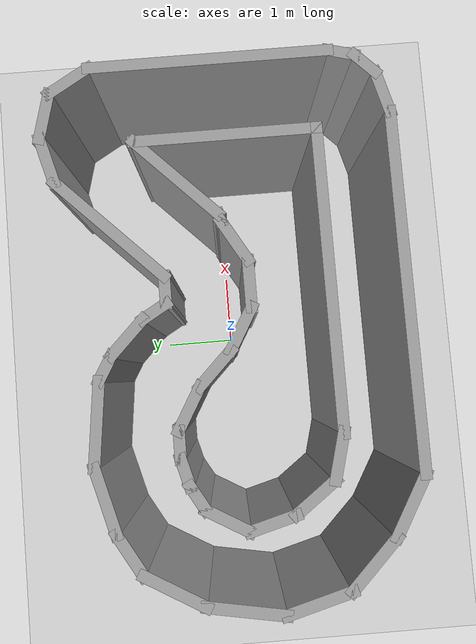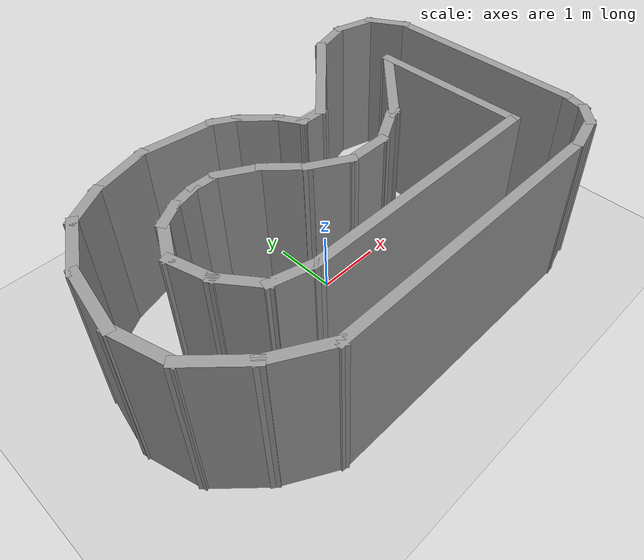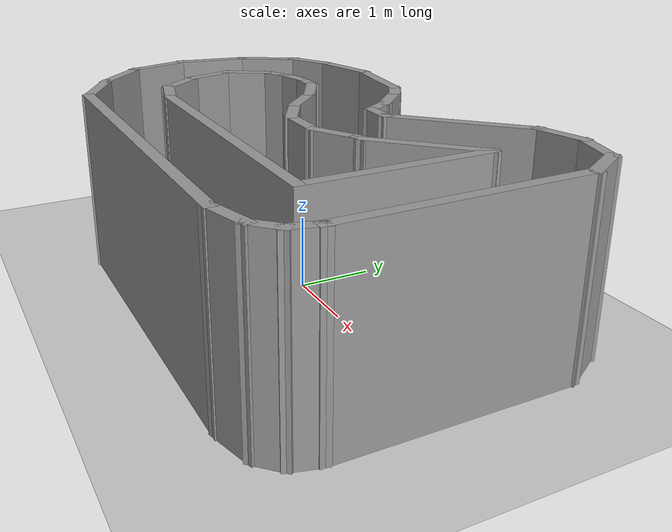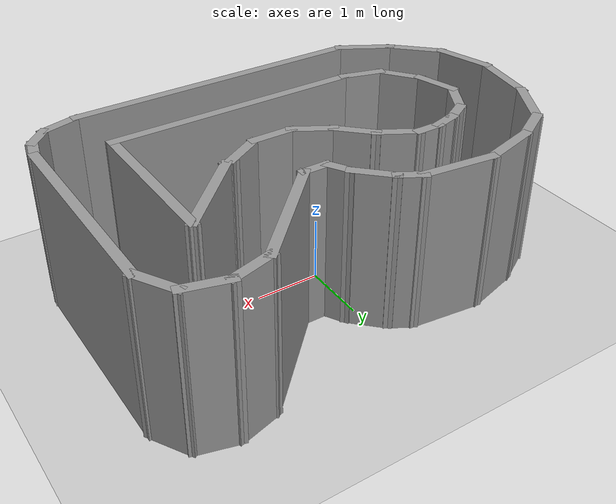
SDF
<sdf version="1.6">
 <world name="default">
  <light name="sun" type="directional">
   <pose>0 0 10 0 -0 0</pose>
   <diffuse>0.8 0.8 0.8 1</diffuse>
   <specular>0.2 0.2 0.2 1</specular>
   <attenuation>
    <range>1000</range>
    <constant>0.9</constant>
    <linear>0.01</linear>
    <quadratic>0.001</quadratic>
   </attenuation>
   <direction>-0.5 0.1 -0.9</direction>
  </light>
  <model name="ground_plane">
   <static>1</static>
   <link name="link">
    <collision name="collision">
     <geometry><plane><normal>0 0 1</normal><size>100 100</size></plane></geometry>
     <surface>
      <contact><collide_bitmask>65535</collide_bitmask></contact>
      <friction><ode><mu>100</mu><mu2>50</mu2></ode></friction>
     </surface>
    </collision>
    <visual name="visual">
     <cast_shadows>0</cast_shadows>
     <geometry><plane><normal>0 0 1</normal><size>100 100</size></plane></geometry>
     <material>
      <script><uri>file://media/materials/scripts/gazebo.material</uri><name>Gazebo/Grey</name></script>
     </material>
    </visual>
   </link>
  </model>
  <gravity>0 0 -9.8</gravity>
  <magnetic_field>6e-06 2.3e-05 -4.2e-05</magnetic_field>
  <atmosphere type="adiabatic"/>
  <physics name="default_physics" default="0" type="ode">
   <max_step_size>0.001</max_step_size>
   <real_time_factor>1</real_time_factor>
   <real_time_update_rate>1000</real_time_update_rate>
  </physics>
  <scene><ambient>0.4 0.4 0.4 1</ambient><background>0.7 0.7 0.7 1</background><shadows>1</shadows></scene>
  <audio><device>default</device></audio>
  <spherical_coordinates>
   <surface_model>EARTH_WGS84</surface_model>
   <latitude_deg>0</latitude_deg>
   <longitude_deg>0</longitude_deg>
   <elevation>0</elevation>
   <heading_deg>0</heading_deg>
  </spherical_coordinates>
  <model name="robocar1">
   <pose>-0.007945 -0.003208 0 0 -0 0</pose>
   <link name="Wall_0">
    <collision name="Wall_0_Collision">
     <geometry><box><size>4.75 0.15 2.5</size></box></geometry>
     <pose>0 0 1.25 0 -0 0</pose>
    </collision>
    <visual name="Wall_0_Visual">
     <pose>0 0 1.25 0 -0 0</pose>
     <geometry><box><size>4.75 0.15 2.5</size></box></geometry>
     <material>
      <script><uri>file://media/materials/scripts/gazebo.material</uri><name>Gazebo/Grey</name></script>
      <ambient>1 1 1 1</ambient>
     </material>
     <meta><layer>0</layer></meta>
    </visual>
    <pose>0.337945 -2.24679 0 0 -0 3.14159</pose>
   </link>
   <link name="Wall_1">
    <collision name="Wall_1_Collision">
     <geometry><box><size>1 0.15 2.5</size></box></geometry>
     <pose>0 0 1.25 0 -0 0</pose>
    </collision>
    <visual name="Wall_1_Visual">
     <pose>0 0 1.25 0 -0 0</pose>
     <geometry><box><size>1 0.15 2.5</size></box></geometry>
     <material>
      <script><uri>file://media/materials/scripts/gazebo.material</uri><name>Gazebo/Grey</name></script>
      <ambient>1 1 1 1</ambient>
     </material>
     <meta><layer>0</layer></meta>
    </visual>
    <pose>-2.33012 -2.03429 0 0 -0 2.61799</pose>
   </link>
   <link name="Wall_10">
    <collision name="Wall_10_Collision">
     <geometry><box><size>0.75 0.15 2.5</size></box></geometry>
     <pose>0 0 1.25 0 -0 0</pose>
    </collision>
    <visual name="Wall_10_Visual">
     <pose>0 0 1.25 0 -0 0</pose>
     <geometry><box><size>0.75 0.15 2.5</size></box></geometry>
     <material>
      <script><uri>file://media/materials/scripts/gazebo.material</uri><name>Gazebo/Grey</name></script>
      <ambient>1 1 1 1</ambient>
     </material>
     <meta><layer>0</layer></meta>
    </visual>
    <pose>0.004227 1.30919 0 0 -0 -0.785398</pose>
   </link>
   <link name="Wall_11">
    <collision name="Wall_11_Collision">
     <geometry><box><size>0.5 0.15 2.5</size></box></geometry>
     <pose>0 0 1.25 0 -0 0</pose>
    </collision>
    <visual name="Wall_11_Visual">
     <pose>0 0 1.25 0 -0 0</pose>
     <geometry><box><size>0.5 0.15 2.5</size></box></geometry>
     <material>
      <script><uri>file://media/materials/scripts/gazebo.material</uri><name>Gazebo/Grey</name></script>
      <ambient>1 1 1 1</ambient>
     </material>
     <meta><layer>0</layer></meta>
    </visual>
    <pose>0.303859 0.945504 0 0 -0 -1.0472</pose>
   </link>
   <link name="Wall_12">
    <collision name="Wall_12_Collision">
     <geometry><box><size>0.5 0.15 2.5</size></box></geometry>
     <pose>0 0 1.25 0 -0 0</pose>
    </collision>
    <visual name="Wall_12_Visual">
     <pose>0 0 1.25 0 -0 0</pose>
     <geometry><box><size>0.5 0.15 2.5</size></box></geometry>
     <material>
      <script><uri>file://media/materials/scripts/gazebo.material</uri><name>Gazebo/Grey</name></script>
      <ambient>1 1 1 1</ambient>
     </material>
     <meta><layer>0</layer></meta>
    </visual>
    <pose>0.566359 0.793949 0 0 -0 0</pose>
   </link>
   <link name="Wall_13">
    <collision name="Wall_13_Collision">
     <geometry><box><size>2 0.15 2.5</size></box></geometry>
     <pose>0 0 1.25 0 -0 0</pose>
    </collision>
    <visual name="Wall_13_Visual">
     <pose>0 0 1.25 0 -0 0</pose>
     <geometry><box><size>2 0.15 2.5</size></box></geometry>
     <material>
      <script><uri>file://media/materials/scripts/gazebo.material</uri><name>Gazebo/Grey</name></script>
      <ambient>1 1 1 1</ambient>
     </material>
     <meta><layer>0</layer></meta>
    </visual>
    <pose>1.39543 1.44802 0 0 -0 0.785398</pose>
   </link>
   <link name="Wall_14">
    <collision name="Wall_14_Collision">
     <geometry><box><size>0.75 0.15 2.5</size></box></geometry>
     <pose>0 0 1.25 0 -0 0</pose>
    </collision>
    <visual name="Wall_14_Visual">
     <pose>0 0 1.25 0 -0 0</pose>
     <geometry><box><size>0.75 0.15 2.5</size></box></geometry>
     <material>
      <script><uri>file://media/materials/scripts/gazebo.material</uri><name>Gazebo/Grey</name></script>
      <ambient>1 1 1 1</ambient>
     </material>
     <meta><layer>0</layer></meta>
    </visual>
    <pose>2.33928 2.17974 0 0 -0 0.261799</pose>
   </link>
   <link name="Wall_15">
    <collision name="Wall_15_Collision">
     <geometry><box><size>0.75 0.15 2.5</size></box></geometry>
     <pose>0 0 1.25 0 -0 0</pose>
    </collision>
    <visual name="Wall_15_Visual">
     <pose>0 0 1.25 0 -0 0</pose>
     <geometry><box><size>0.75 0.15 2.5</size></box></geometry>
     <material>
      <script><uri>file://media/materials/scripts/gazebo.material</uri><name>Gazebo/Grey</name></script>
      <ambient>1 1 1 1</ambient>
     </material>
     <meta><layer>0</layer></meta>
    </visual>
    <pose>2.91884 2.17974 0 0 -0 -0.261799</pose>
   </link>
   <link name="Wall_16">
    <collision name="Wall_16_Collision">
     <geometry><box><size>0.75 0.15 2.5</size></box></geometry>
     <pose>0 0 1.25 0 -0 0</pose>
    </collision>
    <visual name="Wall_16_Visual">
     <pose>0 0 1.25 0 -0 0</pose>
     <geometry><box><size>0.75 0.15 2.5</size></box></geometry>
     <material>
      <script><uri>file://media/materials/scripts/gazebo.material</uri><name>Gazebo/Grey</name></script>
      <ambient>1 1 1 1</ambient>
     </material>
     <meta><layer>0</layer></meta>
    </visual>
    <pose>3.35862 1.84229 0 0 -0 -1.0472</pose>
   </link>
   <link name="Wall_17">
    <collision name="Wall_17_Collision">
     <geometry><box><size>3.25 0.15 2.5</size></box></geometry>
     <pose>0 0 1.25 0 -0 0</pose>
    </collision>
    <visual name="Wall_17_Visual">
     <pose>0 0 1.25 0 -0 0</pose>
     <geometry><box><size>3.25 0.15 2.5</size></box></geometry>
     <material>
      <script><uri>file://media/materials/scripts/gazebo.material</uri><name>Gazebo/Grey</name></script>
      <ambient>1 1 1 1</ambient>
     </material>
     <meta><layer>0</layer></meta>
    </visual>
    <pose>3.50862 0.032482 0 0 -0 -1.5708</pose>
   </link>
   <link name="Wall_18">
    <collision name="Wall_18_Collision">
     <geometry><box><size>0.5 0.15 2.5</size></box></geometry>
     <pose>0 0 1.25 0 -0 0</pose>
    </collision>
    <visual name="Wall_18_Visual">
     <pose>0 0 1.25 0 -0 0</pose>
     <geometry><box><size>0.5 0.15 2.5</size></box></geometry>
     <material>
      <script><uri>file://media/materials/scripts/gazebo.material</uri><name>Gazebo/Grey</name></script>
      <ambient>1 1 1 1</ambient>
     </material>
     <meta><layer>0</layer></meta>
    </visual>
    <pose>3.46332 -1.68656 0 0 -0 -1.8326</pose>
   </link>
   <link name="Wall_19">
    <collision name="Wall_19_Collision">
     <geometry><box><size>0.5 0.15 2.5</size></box></geometry>
     <pose>0 0 1.25 0 -0 0</pose>
    </collision>
    <visual name="Wall_19_Visual">
     <pose>0 0 1.25 0 -0 0</pose>
     <geometry><box><size>0.5 0.15 2.5</size></box></geometry>
     <material>
      <script><uri>file://media/materials/scripts/gazebo.material</uri><name>Gazebo/Grey</name></script>
      <ambient>1 1 1 1</ambient>
     </material>
     <meta><layer>0</layer></meta>
    </visual>
    <pose>3.29429 -1.97934 0 0 -0 -2.35619</pose>
   </link>
   <link name="Wall_2">
    <collision name="Wall_2_Collision">
     <geometry><box><size>1 0.15 2.5</size></box></geometry>
     <pose>0 0 1.25 0 -0 0</pose>
    </collision>
    <visual name="Wall_2_Visual">
     <pose>0 0 1.25 0 -0 0</pose>
     <geometry><box><size>1 0.15 2.5</size></box></geometry>
     <material>
      <script><uri>file://media/materials/scripts/gazebo.material</uri><name>Gazebo/Grey</name></script>
      <ambient>1 1 1 1</ambient>
     </material>
     <meta><layer>0</layer></meta>
    </visual>
    <pose>-2.9987 -1.52127 0 0 -0 2.35619</pose>
   </link>
   <link name="Wall_20">
    <collision name="Wall_20_Collision">
     <geometry><box><size>0.701647 0.15 2.5</size></box></geometry>
     <pose>0 0 1.25 0 -0 0</pose>
    </collision>
    <visual name="Wall_20_Visual">
     <pose>0 0 1.25 0 -0 0</pose>
     <geometry><box><size>0.701647 0.15 2.5</size></box></geometry>
     <material>
      <script><uri>file://media/materials/scripts/gazebo.material</uri><name>Gazebo/Grey</name></script>
      <ambient>1 1 1 1</ambient>
     </material>
     <meta><layer>0</layer></meta>
    </visual>
    <pose>2.90424 -2.17494 0 0 -0 -2.87804</pose>
   </link>
   <link name="Wall_22">
    <collision name="Wall_22_Collision">
     <geometry><box><size>4.04 0.15 2.5</size></box></geometry>
     <pose>0 0 1.25 0 -0 0</pose>
    </collision>
    <visual name="Wall_22_Visual">
     <pose>0 0 1.25 0 -0 0</pose>
     <geometry><box><size>4.04 0.15 2.5</size></box></geometry>
     <material>
      <script><uri>file://media/materials/scripts/gazebo.material</uri><name>Gazebo/Grey</name></script>
      <ambient>1 1 1 1</ambient>
     </material>
     <meta><layer>0</layer></meta>
    </visual>
    <pose>0.552945 -1.28679 0 0 -0 3.14159</pose>
   </link>
   <link name="Wall_23">
    <collision name="Wall_23_Collision">
     <geometry><box><size>0.75 0.15 2.5</size></box></geometry>
     <pose>0 0 1.25 0 -0 0</pose>
    </collision>
    <visual name="Wall_23_Visual">
     <pose>0 0 1.25 0 -0 0</pose>
     <geometry><box><size>0.75 0.15 2.5</size></box></geometry>
     <material>
      <script><uri>file://media/materials/scripts/gazebo.material</uri><name>Gazebo/Grey</name></script>
      <ambient>1 1 1 1</ambient>
     </material>
     <meta><layer>0</layer></meta>
    </visual>
    <pose>-1.66183 -1.20915 0 0 -0 2.87979</pose>
   </link>
   <link name="Wall_24">
    <collision name="Wall_24_Collision">
     <geometry><box><size>0.794196 0.15 2.5</size></box></geometry>
     <pose>0 0 1.25 0 -0 0</pose>
    </collision>
    <visual name="Wall_24_Visual">
     <pose>0 0 1.25 0 -0 0</pose>
     <geometry><box><size>0.794196 0.15 2.5</size></box></geometry>
     <material>
      <script><uri>file://media/materials/scripts/gazebo.material</uri><name>Gazebo/Grey</name></script>
      <ambient>1 1 1 1</ambient>
     </material>
     <meta><layer>0</layer></meta>
    </visual>
    <pose>-2.14364 -0.872903 0 0 -0 2.20952</pose>
   </link>
   <link name="Wall_25">
    <collision name="Wall_25_Collision">
     <geometry><box><size>0.75 0.15 2.5</size></box></geometry>
     <pose>0 0 1.25 0 -0 0</pose>
    </collision>
    <visual name="Wall_25_Visual">
     <pose>0 0 1.25 0 -0 0</pose>
     <geometry><box><size>0.75 0.15 2.5</size></box></geometry>
     <material>
      <script><uri>file://media/materials/scripts/gazebo.material</uri><name>Gazebo/Grey</name></script>
      <ambient>1 1 1 1</ambient>
     </material>
     <meta><layer>0</layer></meta>
    </visual>
    <pose>-2.41331 -0.324527 0 0 -0 1.8326</pose>
   </link>
   <link name="Wall_26">
    <collision name="Wall_26_Collision">
     <geometry><box><size>0.75 0.15 2.5</size></box></geometry>
     <pose>0 0 1.25 0 -0 0</pose>
    </collision>
    <visual name="Wall_26_Visual">
     <pose>0 0 1.25 0 -0 0</pose>
     <geometry><box><size>0.75 0.15 2.5</size></box></geometry>
     <material>
      <script><uri>file://media/materials/scripts/gazebo.material</uri><name>Gazebo/Grey</name></script>
      <ambient>1 1 1 1</ambient>
     </material>
     <meta><layer>0</layer></meta>
    </visual>
    <pose>-2.34096 0.225058 0 0 -0 1.0472</pose>
   </link>
   <link name="Wall_27">
    <collision name="Wall_27_Collision">
     <geometry><box><size>0.5 0.15 2.5</size></box></geometry>
     <pose>0 0 1.25 0 -0 0</pose>
    </collision>
    <visual name="Wall_27_Visual">
     <pose>0 0 1.25 0 -0 0</pose>
     <geometry><box><size>0.5 0.15 2.5</size></box></geometry>
     <material>
      <script><uri>file://media/materials/scripts/gazebo.material</uri><name>Gazebo/Grey</name></script>
      <ambient>1 1 1 1</ambient>
     </material>
     <meta><layer>0</layer></meta>
    </visual>
    <pose>-2.0394 0.572366 0 0 -0 0.523599</pose>
   </link>
   <link name="Wall_28">
    <collision name="Wall_28_Collision">
     <geometry><box><size>0.5 0.15 2.5</size></box></geometry>
     <pose>0 0 1.25 0 -0 0</pose>
    </collision>
    <visual name="Wall_28_Visual">
     <pose>0 0 1.25 0 -0 0</pose>
     <geometry><box><size>0.5 0.15 2.5</size></box></geometry>
     <material>
      <script><uri>file://media/materials/scripts/gazebo.material</uri><name>Gazebo/Grey</name></script>
      <ambient>1 1 1 1</ambient>
     </material>
     <meta><layer>0</layer></meta>
    </visual>
    <pose>-1.71881 0.705159 0 0 -0 0.261799</pose>
   </link>
   <link name="Wall_29">
    <collision name="Wall_29_Collision">
     <geometry><box><size>0.5 0.15 2.5</size></box></geometry>
     <pose>0 0 1.25 0 -0 0</pose>
    </collision>
    <visual name="Wall_29_Visual">
     <pose>0 0 1.25 0 -0 0</pose>
     <geometry><box><size>0.5 0.15 2.5</size></box></geometry>
     <material>
      <script><uri>file://media/materials/scripts/gazebo.material</uri><name>Gazebo/Grey</name></script>
      <ambient>1 1 1 1</ambient>
     </material>
     <meta><layer>0</layer></meta>
    </visual>
    <pose>-1.37477 0.750452 0 0 -0 0</pose>
   </link>
   <link name="Wall_3">
    <collision name="Wall_3_Collision">
     <geometry><box><size>1 0.15 2.5</size></box></geometry>
     <pose>0 0 1.25 0 -0 0</pose>
    </collision>
    <visual name="Wall_3_Visual">
     <pose>0 0 1.25 0 -0 0</pose>
     <geometry><box><size>1 0.15 2.5</size></box></geometry>
     <material>
      <script><uri>file://media/materials/scripts/gazebo.material</uri><name>Gazebo/Grey</name></script>
      <ambient>1 1 1 1</ambient>
     </material>
     <meta><layer>0</layer></meta>
    </visual>
    <pose>-3.40922 -0.810233 0 0 -0 1.8326</pose>
   </link>
   <link name="Wall_30">
    <collision name="Wall_30_Collision">
     <geometry><box><size>0.75 0.15 2.5</size></box></geometry>
     <pose>0 0 1.25 0 -0 0</pose>
    </collision>
    <visual name="Wall_30_Visual">
     <pose>0 0 1.25 0 -0 0</pose>
     <geometry><box><size>0.75 0.15 2.5</size></box></geometry>
     <material>
      <script><uri>file://media/materials/scripts/gazebo.material</uri><name>Gazebo/Grey</name></script>
      <ambient>1 1 1 1</ambient>
     </material>
     <meta><layer>0</layer></meta>
    </visual>
    <pose>-0.939965 0.600452 0 0 -0 -0.523599</pose>
   </link>
   <link name="Wall_31">
    <collision name="Wall_31_Collision">
     <geometry><box><size>0.75 0.15 2.5</size></box></geometry>
     <pose>0 0 1.25 0 -0 0</pose>
    </collision>
    <visual name="Wall_31_Visual">
     <pose>0 0 1.25 0 -0 0</pose>
     <geometry><box><size>0.75 0.15 2.5</size></box></geometry>
     <material>
      <script><uri>file://media/materials/scripts/gazebo.material</uri><name>Gazebo/Grey</name></script>
      <ambient>1 1 1 1</ambient>
     </material>
     <meta><layer>0</layer></meta>
    </visual>
    <pose>-0.468025 0.23832 0 0 -0 -0.785398</pose>
   </link>
   <link name="Wall_32">
    <collision name="Wall_32_Collision">
     <geometry><box><size>0.75 0.15 2.5</size></box></geometry>
     <pose>0 0 1.25 0 -0 0</pose>
    </collision>
    <visual name="Wall_32_Visual">
     <pose>0 0 1.25 0 -0 0</pose>
     <geometry><box><size>0.75 0.15 2.5</size></box></geometry>
     <material>
      <script><uri>file://media/materials/scripts/gazebo.material</uri><name>Gazebo/Grey</name></script>
      <ambient>1 1 1 1</ambient>
     </material>
     <meta><layer>0</layer></meta>
    </visual>
    <pose>0.003915 -0.123812 0 0 -0 -0.523599</pose>
   </link>
   <link name="Wall_33">
    <collision name="Wall_33_Collision">
     <geometry><box><size>0.75 0.15 2.5</size></box></geometry>
     <pose>0 0 1.25 0 -0 0</pose>
    </collision>
    <visual name="Wall_33_Visual">
     <pose>0 0 1.25 0 -0 0</pose>
     <geometry><box><size>0.75 0.15 2.5</size></box></geometry>
     <material>
      <script><uri>file://media/materials/scripts/gazebo.material</uri><name>Gazebo/Grey</name></script>
      <ambient>1 1 1 1</ambient>
     </material>
     <meta><layer>0</layer></meta>
    </visual>
    <pose>0.563722 -0.273812 0 0 -0 0</pose>
   </link>
   <link name="Wall_34">
    <collision name="Wall_34_Collision">
     <geometry><box><size>0.75 0.15 2.5</size></box></geometry>
     <pose>0 0 1.25 0 -0 0</pose>
    </collision>
    <visual name="Wall_34_Visual">
     <pose>0 0 1.25 0 -0 0</pose>
     <geometry><box><size>0.75 0.15 2.5</size></box></geometry>
     <material>
      <script><uri>file://media/materials/scripts/gazebo.material</uri><name>Gazebo/Grey</name></script>
      <ambient>1 1 1 1</ambient>
     </material>
     <meta><layer>0</layer></meta>
    </visual>
    <pose>1.12353 -0.123812 0 0 -0 0.523599</pose>
   </link>
   <link name="Wall_35">
    <collision name="Wall_35_Collision">
     <geometry><box><size>0.25 0.15 2.5</size></box></geometry>
     <pose>0 0 1.25 0 -0 0</pose>
    </collision>
    <visual name="Wall_35_Visual">
     <pose>0 0 1.25 0 -0 0</pose>
     <geometry><box><size>0.25 0.15 2.5</size></box></geometry>
     <material>
      <script><uri>file://media/materials/scripts/gazebo.material</uri><name>Gazebo/Grey</name></script>
      <ambient>1 1 1 1</ambient>
     </material>
     <meta><layer>0</layer></meta>
    </visual>
    <pose>1.43163 0.039129 0 0 -0 0.261799</pose>
   </link>
   <link name="Wall_36">
    <collision name="Wall_36_Collision">
     <geometry><box><size>1.58484 0.15 2.5</size></box></geometry>
     <pose>0 0 1.25 0 -0 0</pose>
    </collision>
    <visual name="Wall_36_Visual">
     <pose>0 0 1.25 0 -0 0</pose>
     <geometry><box><size>1.58484 0.15 2.5</size></box></geometry>
     <material>
      <script><uri>file://media/materials/scripts/gazebo.material</uri><name>Gazebo/Grey</name></script>
      <ambient>1 1 1 1</ambient>
     </material>
     <meta><layer>0</layer></meta>
    </visual>
    <pose>1.98894 0.557639 0 0 -0 0.782009</pose>
   </link>
   <link name="Wall_37">
    <collision name="Wall_37_Collision">
     <geometry><box><size>2.5 0.15 2.5</size></box></geometry>
     <pose>0 0 1.25 0 -0 0</pose>
    </collision>
    <visual name="Wall_37_Visual">
     <pose>0 0 1.25 0 -0 0</pose>
     <geometry><box><size>2.5 0.15 2.5</size></box></geometry>
     <material>
      <script><uri>file://media/materials/scripts/gazebo.material</uri><name>Gazebo/Grey</name></script>
      <ambient>1 1 1 1</ambient>
     </material>
     <meta><layer>0</layer></meta>
    </visual>
    <pose>2.49795 -0.111792 0 0 -0 -1.5708</pose>
   </link>
   <link name="Wall_4">
    <collision name="Wall_4_Collision">
     <geometry><box><size>1.13085 0.15 2.5</size></box></geometry>
     <pose>0 0 1.25 0 -0 0</pose>
    </collision>
    <visual name="Wall_4_Visual">
     <pose>0 0 1.25 0 -0 0</pose>
     <geometry><box><size>1.13085 0.15 2.5</size></box></geometry>
     <material>
      <script><uri>file://media/materials/scripts/gazebo.material</uri><name>Gazebo/Grey</name></script>
      <ambient>1 1 1 1</ambient>
     </material>
     <meta><layer>0</layer></meta>
    </visual>
    <pose>-3.43119 0.082745 0 0 -0 1.39034</pose>
   </link>
   <link name="Wall_5">
    <collision name="Wall_5_Collision">
     <geometry><box><size>1 0.15 2.5</size></box></geometry>
     <pose>0 0 1.25 0 -0 0</pose>
    </collision>
    <visual name="Wall_5_Visual">
     <pose>0 0 1.25 0 -0 0</pose>
     <geometry><box><size>1 0.15 2.5</size></box></geometry>
     <material>
      <script><uri>file://media/materials/scripts/gazebo.material</uri><name>Gazebo/Grey</name></script>
      <ambient>1 1 1 1</ambient>
     </material>
     <meta><layer>0</layer></meta>
    </visual>
    <pose>-3.13067 0.933265 0 0 -0 1.0472</pose>
   </link>
   <link name="Wall_6">
    <collision name="Wall_6_Collision">
     <geometry><box><size>0.75 0.15 2.5</size></box></geometry>
     <pose>0 0 1.25 0 -0 0</pose>
    </collision>
    <visual name="Wall_6_Visual">
     <pose>0 0 1.25 0 -0 0</pose>
     <geometry><box><size>0.75 0.15 2.5</size></box></geometry>
     <material>
      <script><uri>file://media/materials/scripts/gazebo.material</uri><name>Gazebo/Grey</name></script>
      <ambient>1 1 1 1</ambient>
     </material>
     <meta><layer>0</layer></meta>
    </visual>
    <pose>-2.65836 1.45133 0 0 -0 0.523599</pose>
   </link>
   <link name="Wall_7">
    <collision name="Wall_7_Collision">
     <geometry><box><size>1 0.15 2.5</size></box></geometry>
     <pose>0 0 1.25 0 -0 0</pose>
    </collision>
    <visual name="Wall_7_Visual">
     <pose>0 0 1.25 0 -0 0</pose>
     <geometry><box><size>1 0.15 2.5</size></box></geometry>
     <material>
      <script><uri>file://media/materials/scripts/gazebo.material</uri><name>Gazebo/Grey</name></script>
      <ambient>1 1 1 1</ambient>
     </material>
     <meta><layer>0</layer></meta>
    </visual>
    <pose>-1.98804 1.71132 0 0 -0 0.261799</pose>
   </link>
   <link name="Wall_8">
    <collision name="Wall_8_Collision">
     <geometry><box><size>1.22381 0.15 2.5</size></box></geometry>
     <pose>0 0 1.25 0 -0 0</pose>
    </collision>
    <visual name="Wall_8_Visual">
     <pose>0 0 1.25 0 -0 0</pose>
     <geometry><box><size>1.22381 0.15 2.5</size></box></geometry>
     <material>
      <script><uri>file://media/materials/scripts/gazebo.material</uri><name>Gazebo/Grey</name></script>
      <ambient>1 1 1 1</ambient>
     </material>
     <meta><layer>0</layer></meta>
    </visual>
    <pose>-1.04427 1.75882 0 0 -0 -0.116673</pose>
   </link>
   <link name="Wall_9">
    <collision name="Wall_9_Collision">
     <geometry><box><size>0.5 0.15 2.5</size></box></geometry>
     <pose>0 0 1.25 0 -0 0</pose>
    </collision>
    <visual name="Wall_9_Visual">
     <pose>0 0 1.25 0 -0 0</pose>
     <geometry><box><size>0.5 0.15 2.5</size></box></geometry>
     <material>
      <script><uri>file://media/materials/scripts/gazebo.material</uri><name>Gazebo/Grey</name></script>
      <ambient>1 1 1 1</ambient>
     </material>
     <meta><layer>0</layer></meta>
    </visual>
    <pose>-0.35946 1.60882 0 0 -0 -0.523599</pose>
   </link>
   <static>1</static>
  </model>
 </world>
</sdf>
